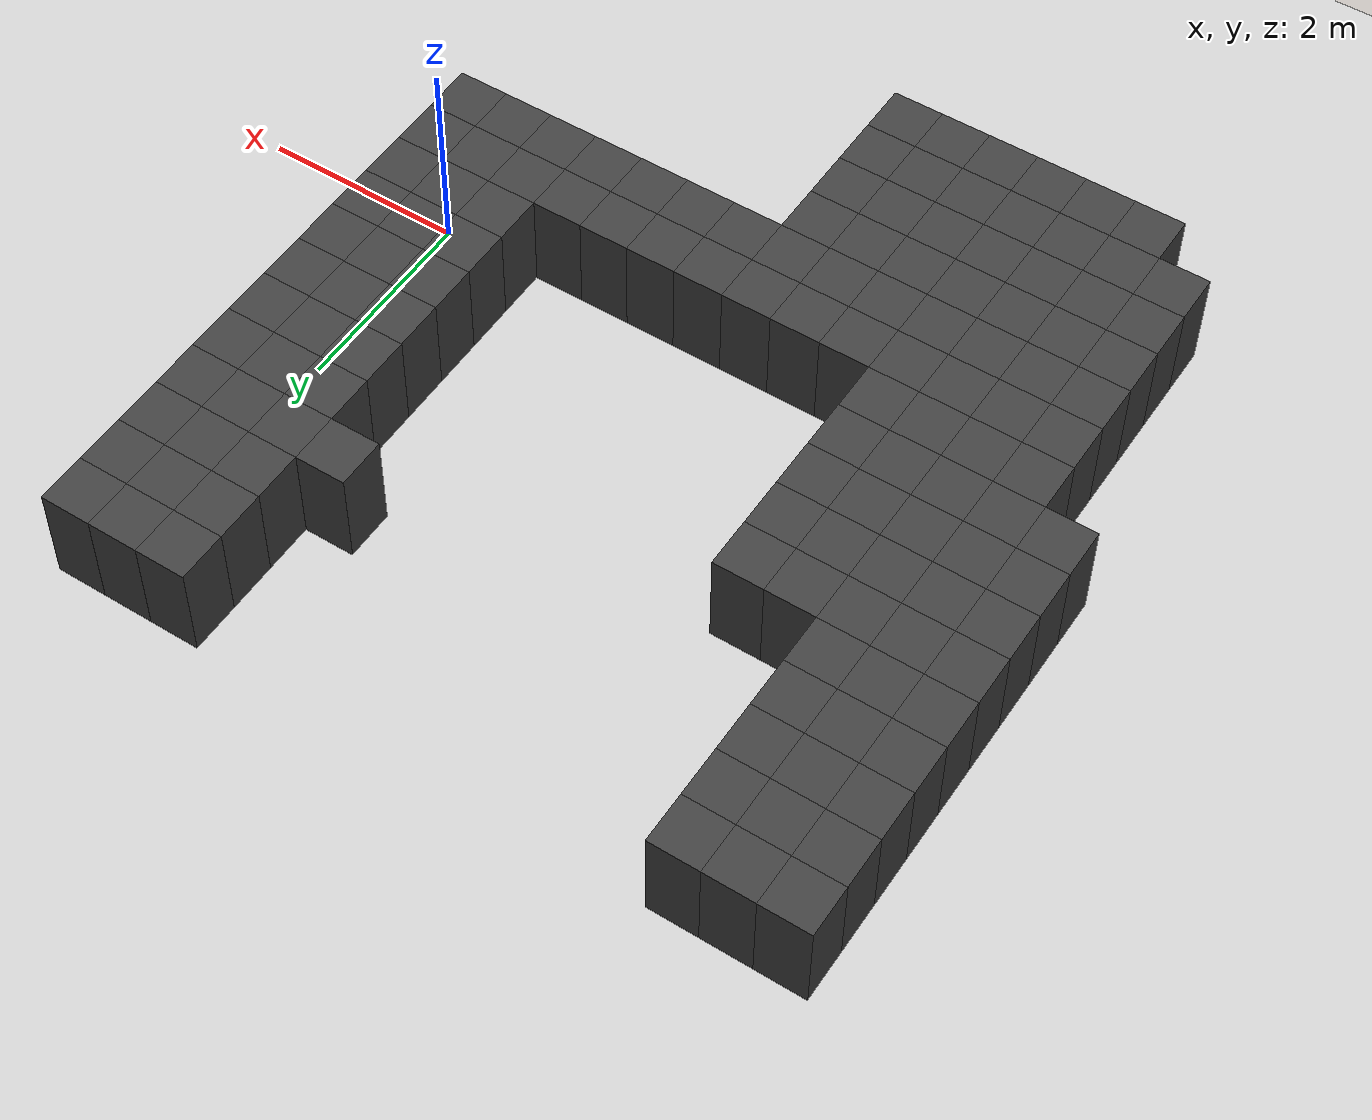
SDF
<sdf version="1.7">
 <world name="map_14802">
  <model name="ground_plane">
   <static>true</static>
   <link name="link">
    <collision name="collision">
     <geometry><plane><normal>0 0 1</normal><size>200 200</size></plane></geometry>
    </collision>
    <visual name="visual">
     <geometry><plane><normal>0 0 1</normal><size>200 200</size></plane></geometry>
     <material><ambient>0.8 0.8 0.8 1</ambient><diffuse>0.8 0.8 0.8 1</diffuse></material>
    </visual>
   </link>
  </model>
  <model name="maze_environment">
   <static>true</static>
   <link name="wall_536">
    <pose>-6.750 4.750 0.500 0 0 0</pose>
    <collision name="col"><geometry><box><size>0.5 0.5 1.0</size></box></geometry></collision>
    <visual name="vis">
     <geometry><box><size>0.5 0.5 1.0</size></box></geometry>
     <material><ambient>0.15 0.15 0.15 1</ambient><diffuse>0.25 0.25 0.25 1</diffuse></material>
    </visual>
   </link>
   <link name="wall_537">
    <pose>-6.250 4.750 0.500 0 0 0</pose>
    <collision name="col"><geometry><box><size>0.5 0.5 1.0</size></box></geometry></collision>
    <visual name="vis">
     <geometry><box><size>0.5 0.5 1.0</size></box></geometry>
     <material><ambient>0.15 0.15 0.15 1</ambient><diffuse>0.25 0.25 0.25 1</diffuse></material>
    </visual>
   </link>
   <link name="wall_538">
    <pose>-5.750 4.750 0.500 0 0 0</pose>
    <collision name="col"><geometry><box><size>0.5 0.5 1.0</size></box></geometry></collision>
    <visual name="vis">
     <geometry><box><size>0.5 0.5 1.0</size></box></geometry>
     <material><ambient>0.15 0.15 0.15 1</ambient><diffuse>0.25 0.25 0.25 1</diffuse></material>
    </visual>
   </link>
   <link name="wall_539">
    <pose>-0.750 4.750 0.500 0 0 0</pose>
    <collision name="col"><geometry><box><size>0.5 0.5 1.0</size></box></geometry></collision>
    <visual name="vis">
     <geometry><box><size>0.5 0.5 1.0</size></box></geometry>
     <material><ambient>0.15 0.15 0.15 1</ambient><diffuse>0.25 0.25 0.25 1</diffuse></material>
    </visual>
   </link>
   <link name="wall_540">
    <pose>-0.250 4.750 0.500 0 0 0</pose>
    <collision name="col"><geometry><box><size>0.5 0.5 1.0</size></box></geometry></collision>
    <visual name="vis">
     <geometry><box><size>0.5 0.5 1.0</size></box></geometry>
     <material><ambient>0.15 0.15 0.15 1</ambient><diffuse>0.25 0.25 0.25 1</diffuse></material>
    </visual>
   </link>
   <link name="wall_541">
    <pose>0.250 4.750 0.500 0 0 0</pose>
    <collision name="col"><geometry><box><size>0.5 0.5 1.0</size></box></geometry></collision>
    <visual name="vis">
     <geometry><box><size>0.5 0.5 1.0</size></box></geometry>
     <material><ambient>0.15 0.15 0.15 1</ambient><diffuse>0.25 0.25 0.25 1</diffuse></material>
    </visual>
   </link>
   <link name="wall_576">
    <pose>-6.750 4.250 0.500 0 0 0</pose>
    <collision name="col"><geometry><box><size>0.5 0.5 1.0</size></box></geometry></collision>
    <visual name="vis">
     <geometry><box><size>0.5 0.5 1.0</size></box></geometry>
     <material><ambient>0.15 0.15 0.15 1</ambient><diffuse>0.25 0.25 0.25 1</diffuse></material>
    </visual>
   </link>
   <link name="wall_577">
    <pose>-6.250 4.250 0.500 0 0 0</pose>
    <collision name="col"><geometry><box><size>0.5 0.5 1.0</size></box></geometry></collision>
    <visual name="vis">
     <geometry><box><size>0.5 0.5 1.0</size></box></geometry>
     <material><ambient>0.15 0.15 0.15 1</ambient><diffuse>0.25 0.25 0.25 1</diffuse></material>
    </visual>
   </link>
   <link name="wall_578">
    <pose>-5.750 4.250 0.500 0 0 0</pose>
    <collision name="col"><geometry><box><size>0.5 0.5 1.0</size></box></geometry></collision>
    <visual name="vis">
     <geometry><box><size>0.5 0.5 1.0</size></box></geometry>
     <material><ambient>0.15 0.15 0.15 1</ambient><diffuse>0.25 0.25 0.25 1</diffuse></material>
    </visual>
   </link>
   <link name="wall_579">
    <pose>-0.750 4.250 0.500 0 0 0</pose>
    <collision name="col"><geometry><box><size>0.5 0.5 1.0</size></box></geometry></collision>
    <visual name="vis">
     <geometry><box><size>0.5 0.5 1.0</size></box></geometry>
     <material><ambient>0.15 0.15 0.15 1</ambient><diffuse>0.25 0.25 0.25 1</diffuse></material>
    </visual>
   </link>
   <link name="wall_580">
    <pose>-0.250 4.250 0.500 0 0 0</pose>
    <collision name="col"><geometry><box><size>0.5 0.5 1.0</size></box></geometry></collision>
    <visual name="vis">
     <geometry><box><size>0.5 0.5 1.0</size></box></geometry>
     <material><ambient>0.15 0.15 0.15 1</ambient><diffuse>0.25 0.25 0.25 1</diffuse></material>
    </visual>
   </link>
   <link name="wall_581">
    <pose>0.250 4.250 0.500 0 0 0</pose>
    <collision name="col"><geometry><box><size>0.5 0.5 1.0</size></box></geometry></collision>
    <visual name="vis">
     <geometry><box><size>0.5 0.5 1.0</size></box></geometry>
     <material><ambient>0.15 0.15 0.15 1</ambient><diffuse>0.25 0.25 0.25 1</diffuse></material>
    </visual>
   </link>
   <link name="wall_616">
    <pose>-6.750 3.750 0.500 0 0 0</pose>
    <collision name="col"><geometry><box><size>0.5 0.5 1.0</size></box></geometry></collision>
    <visual name="vis">
     <geometry><box><size>0.5 0.5 1.0</size></box></geometry>
     <material><ambient>0.15 0.15 0.15 1</ambient><diffuse>0.25 0.25 0.25 1</diffuse></material>
    </visual>
   </link>
   <link name="wall_617">
    <pose>-6.250 3.750 0.500 0 0 0</pose>
    <collision name="col"><geometry><box><size>0.5 0.5 1.0</size></box></geometry></collision>
    <visual name="vis">
     <geometry><box><size>0.5 0.5 1.0</size></box></geometry>
     <material><ambient>0.15 0.15 0.15 1</ambient><diffuse>0.25 0.25 0.25 1</diffuse></material>
    </visual>
   </link>
   <link name="wall_618">
    <pose>-5.750 3.750 0.500 0 0 0</pose>
    <collision name="col"><geometry><box><size>0.5 0.5 1.0</size></box></geometry></collision>
    <visual name="vis">
     <geometry><box><size>0.5 0.5 1.0</size></box></geometry>
     <material><ambient>0.15 0.15 0.15 1</ambient><diffuse>0.25 0.25 0.25 1</diffuse></material>
    </visual>
   </link>
   <link name="wall_619">
    <pose>-0.750 3.750 0.500 0 0 0</pose>
    <collision name="col"><geometry><box><size>0.5 0.5 1.0</size></box></geometry></collision>
    <visual name="vis">
     <geometry><box><size>0.5 0.5 1.0</size></box></geometry>
     <material><ambient>0.15 0.15 0.15 1</ambient><diffuse>0.25 0.25 0.25 1</diffuse></material>
    </visual>
   </link>
   <link name="wall_620">
    <pose>-0.250 3.750 0.500 0 0 0</pose>
    <collision name="col"><geometry><box><size>0.5 0.5 1.0</size></box></geometry></collision>
    <visual name="vis">
     <geometry><box><size>0.5 0.5 1.0</size></box></geometry>
     <material><ambient>0.15 0.15 0.15 1</ambient><diffuse>0.25 0.25 0.25 1</diffuse></material>
    </visual>
   </link>
   <link name="wall_621">
    <pose>0.250 3.750 0.500 0 0 0</pose>
    <collision name="col"><geometry><box><size>0.5 0.5 1.0</size></box></geometry></collision>
    <visual name="vis">
     <geometry><box><size>0.5 0.5 1.0</size></box></geometry>
     <material><ambient>0.15 0.15 0.15 1</ambient><diffuse>0.25 0.25 0.25 1</diffuse></material>
    </visual>
   </link>
   <link name="wall_656">
    <pose>-6.750 3.250 0.500 0 0 0</pose>
    <collision name="col"><geometry><box><size>0.5 0.5 1.0</size></box></geometry></collision>
    <visual name="vis">
     <geometry><box><size>0.5 0.5 1.0</size></box></geometry>
     <material><ambient>0.15 0.15 0.15 1</ambient><diffuse>0.25 0.25 0.25 1</diffuse></material>
    </visual>
   </link>
   <link name="wall_657">
    <pose>-6.250 3.250 0.500 0 0 0</pose>
    <collision name="col"><geometry><box><size>0.5 0.5 1.0</size></box></geometry></collision>
    <visual name="vis">
     <geometry><box><size>0.5 0.5 1.0</size></box></geometry>
     <material><ambient>0.15 0.15 0.15 1</ambient><diffuse>0.25 0.25 0.25 1</diffuse></material>
    </visual>
   </link>
   <link name="wall_658">
    <pose>-5.750 3.250 0.500 0 0 0</pose>
    <collision name="col"><geometry><box><size>0.5 0.5 1.0</size></box></geometry></collision>
    <visual name="vis">
     <geometry><box><size>0.5 0.5 1.0</size></box></geometry>
     <material><ambient>0.15 0.15 0.15 1</ambient><diffuse>0.25 0.25 0.25 1</diffuse></material>
    </visual>
   </link>
   <link name="wall_659">
    <pose>-1.250 3.250 0.500 0 0 0</pose>
    <collision name="col"><geometry><box><size>0.5 0.5 1.0</size></box></geometry></collision>
    <visual name="vis">
     <geometry><box><size>0.5 0.5 1.0</size></box></geometry>
     <material><ambient>0.15 0.15 0.15 1</ambient><diffuse>0.25 0.25 0.25 1</diffuse></material>
    </visual>
   </link>
   <link name="wall_660">
    <pose>-0.750 3.250 0.500 0 0 0</pose>
    <collision name="col"><geometry><box><size>0.5 0.5 1.0</size></box></geometry></collision>
    <visual name="vis">
     <geometry><box><size>0.5 0.5 1.0</size></box></geometry>
     <material><ambient>0.15 0.15 0.15 1</ambient><diffuse>0.25 0.25 0.25 1</diffuse></material>
    </visual>
   </link>
   <link name="wall_661">
    <pose>-0.250 3.250 0.500 0 0 0</pose>
    <collision name="col"><geometry><box><size>0.5 0.5 1.0</size></box></geometry></collision>
    <visual name="vis">
     <geometry><box><size>0.5 0.5 1.0</size></box></geometry>
     <material><ambient>0.15 0.15 0.15 1</ambient><diffuse>0.25 0.25 0.25 1</diffuse></material>
    </visual>
   </link>
   <link name="wall_662">
    <pose>0.250 3.250 0.500 0 0 0</pose>
    <collision name="col"><geometry><box><size>0.5 0.5 1.0</size></box></geometry></collision>
    <visual name="vis">
     <geometry><box><size>0.5 0.5 1.0</size></box></geometry>
     <material><ambient>0.15 0.15 0.15 1</ambient><diffuse>0.25 0.25 0.25 1</diffuse></material>
    </visual>
   </link>
   <link name="wall_697">
    <pose>-6.750 2.750 0.500 0 0 0</pose>
    <collision name="col"><geometry><box><size>0.5 0.5 1.0</size></box></geometry></collision>
    <visual name="vis">
     <geometry><box><size>0.5 0.5 1.0</size></box></geometry>
     <material><ambient>0.15 0.15 0.15 1</ambient><diffuse>0.25 0.25 0.25 1</diffuse></material>
    </visual>
   </link>
   <link name="wall_698">
    <pose>-6.250 2.750 0.500 0 0 0</pose>
    <collision name="col"><geometry><box><size>0.5 0.5 1.0</size></box></geometry></collision>
    <visual name="vis">
     <geometry><box><size>0.5 0.5 1.0</size></box></geometry>
     <material><ambient>0.15 0.15 0.15 1</ambient><diffuse>0.25 0.25 0.25 1</diffuse></material>
    </visual>
   </link>
   <link name="wall_699">
    <pose>-5.750 2.750 0.500 0 0 0</pose>
    <collision name="col"><geometry><box><size>0.5 0.5 1.0</size></box></geometry></collision>
    <visual name="vis">
     <geometry><box><size>0.5 0.5 1.0</size></box></geometry>
     <material><ambient>0.15 0.15 0.15 1</ambient><diffuse>0.25 0.25 0.25 1</diffuse></material>
    </visual>
   </link>
   <link name="wall_700">
    <pose>-0.750 2.750 0.500 0 0 0</pose>
    <collision name="col"><geometry><box><size>0.5 0.5 1.0</size></box></geometry></collision>
    <visual name="vis">
     <geometry><box><size>0.5 0.5 1.0</size></box></geometry>
     <material><ambient>0.15 0.15 0.15 1</ambient><diffuse>0.25 0.25 0.25 1</diffuse></material>
    </visual>
   </link>
   <link name="wall_701">
    <pose>-0.250 2.750 0.500 0 0 0</pose>
    <collision name="col"><geometry><box><size>0.5 0.5 1.0</size></box></geometry></collision>
    <visual name="vis">
     <geometry><box><size>0.5 0.5 1.0</size></box></geometry>
     <material><ambient>0.15 0.15 0.15 1</ambient><diffuse>0.25 0.25 0.25 1</diffuse></material>
    </visual>
   </link>
   <link name="wall_702">
    <pose>0.250 2.750 0.500 0 0 0</pose>
    <collision name="col"><geometry><box><size>0.5 0.5 1.0</size></box></geometry></collision>
    <visual name="vis">
     <geometry><box><size>0.5 0.5 1.0</size></box></geometry>
     <material><ambient>0.15 0.15 0.15 1</ambient><diffuse>0.25 0.25 0.25 1</diffuse></material>
    </visual>
   </link>
   <link name="wall_734">
    <pose>-6.750 2.250 0.500 0 0 0</pose>
    <collision name="col"><geometry><box><size>0.5 0.5 1.0</size></box></geometry></collision>
    <visual name="vis">
     <geometry><box><size>0.5 0.5 1.0</size></box></geometry>
     <material><ambient>0.15 0.15 0.15 1</ambient><diffuse>0.25 0.25 0.25 1</diffuse></material>
    </visual>
   </link>
   <link name="wall_735">
    <pose>-6.250 2.250 0.500 0 0 0</pose>
    <collision name="col"><geometry><box><size>0.5 0.5 1.0</size></box></geometry></collision>
    <visual name="vis">
     <geometry><box><size>0.5 0.5 1.0</size></box></geometry>
     <material><ambient>0.15 0.15 0.15 1</ambient><diffuse>0.25 0.25 0.25 1</diffuse></material>
    </visual>
   </link>
   <link name="wall_736">
    <pose>-5.750 2.250 0.500 0 0 0</pose>
    <collision name="col"><geometry><box><size>0.5 0.5 1.0</size></box></geometry></collision>
    <visual name="vis">
     <geometry><box><size>0.5 0.5 1.0</size></box></geometry>
     <material><ambient>0.15 0.15 0.15 1</ambient><diffuse>0.25 0.25 0.25 1</diffuse></material>
    </visual>
   </link>
   <link name="wall_737">
    <pose>-5.250 2.250 0.500 0 0 0</pose>
    <collision name="col"><geometry><box><size>0.5 0.5 1.0</size></box></geometry></collision>
    <visual name="vis">
     <geometry><box><size>0.5 0.5 1.0</size></box></geometry>
     <material><ambient>0.15 0.15 0.15 1</ambient><diffuse>0.25 0.25 0.25 1</diffuse></material>
    </visual>
   </link>
   <link name="wall_738">
    <pose>-4.750 2.250 0.500 0 0 0</pose>
    <collision name="col"><geometry><box><size>0.5 0.5 1.0</size></box></geometry></collision>
    <visual name="vis">
     <geometry><box><size>0.5 0.5 1.0</size></box></geometry>
     <material><ambient>0.15 0.15 0.15 1</ambient><diffuse>0.25 0.25 0.25 1</diffuse></material>
    </visual>
   </link>
   <link name="wall_739">
    <pose>-0.750 2.250 0.500 0 0 0</pose>
    <collision name="col"><geometry><box><size>0.5 0.5 1.0</size></box></geometry></collision>
    <visual name="vis">
     <geometry><box><size>0.5 0.5 1.0</size></box></geometry>
     <material><ambient>0.15 0.15 0.15 1</ambient><diffuse>0.25 0.25 0.25 1</diffuse></material>
    </visual>
   </link>
   <link name="wall_740">
    <pose>-0.250 2.250 0.500 0 0 0</pose>
    <collision name="col"><geometry><box><size>0.5 0.5 1.0</size></box></geometry></collision>
    <visual name="vis">
     <geometry><box><size>0.5 0.5 1.0</size></box></geometry>
     <material><ambient>0.15 0.15 0.15 1</ambient><diffuse>0.25 0.25 0.25 1</diffuse></material>
    </visual>
   </link>
   <link name="wall_741">
    <pose>0.250 2.250 0.500 0 0 0</pose>
    <collision name="col"><geometry><box><size>0.5 0.5 1.0</size></box></geometry></collision>
    <visual name="vis">
     <geometry><box><size>0.5 0.5 1.0</size></box></geometry>
     <material><ambient>0.15 0.15 0.15 1</ambient><diffuse>0.25 0.25 0.25 1</diffuse></material>
    </visual>
   </link>
   <link name="wall_771">
    <pose>-6.750 1.750 0.500 0 0 0</pose>
    <collision name="col"><geometry><box><size>0.5 0.5 1.0</size></box></geometry></collision>
    <visual name="vis">
     <geometry><box><size>0.5 0.5 1.0</size></box></geometry>
     <material><ambient>0.15 0.15 0.15 1</ambient><diffuse>0.25 0.25 0.25 1</diffuse></material>
    </visual>
   </link>
   <link name="wall_772">
    <pose>-6.250 1.750 0.500 0 0 0</pose>
    <collision name="col"><geometry><box><size>0.5 0.5 1.0</size></box></geometry></collision>
    <visual name="vis">
     <geometry><box><size>0.5 0.5 1.0</size></box></geometry>
     <material><ambient>0.15 0.15 0.15 1</ambient><diffuse>0.25 0.25 0.25 1</diffuse></material>
    </visual>
   </link>
   <link name="wall_773">
    <pose>-5.750 1.750 0.500 0 0 0</pose>
    <collision name="col"><geometry><box><size>0.5 0.5 1.0</size></box></geometry></collision>
    <visual name="vis">
     <geometry><box><size>0.5 0.5 1.0</size></box></geometry>
     <material><ambient>0.15 0.15 0.15 1</ambient><diffuse>0.25 0.25 0.25 1</diffuse></material>
    </visual>
   </link>
   <link name="wall_774">
    <pose>-5.250 1.750 0.500 0 0 0</pose>
    <collision name="col"><geometry><box><size>0.5 0.5 1.0</size></box></geometry></collision>
    <visual name="vis">
     <geometry><box><size>0.5 0.5 1.0</size></box></geometry>
     <material><ambient>0.15 0.15 0.15 1</ambient><diffuse>0.25 0.25 0.25 1</diffuse></material>
    </visual>
   </link>
   <link name="wall_775">
    <pose>-4.750 1.750 0.500 0 0 0</pose>
    <collision name="col"><geometry><box><size>0.5 0.5 1.0</size></box></geometry></collision>
    <visual name="vis">
     <geometry><box><size>0.5 0.5 1.0</size></box></geometry>
     <material><ambient>0.15 0.15 0.15 1</ambient><diffuse>0.25 0.25 0.25 1</diffuse></material>
    </visual>
   </link>
   <link name="wall_776">
    <pose>-0.750 1.750 0.500 0 0 0</pose>
    <collision name="col"><geometry><box><size>0.5 0.5 1.0</size></box></geometry></collision>
    <visual name="vis">
     <geometry><box><size>0.5 0.5 1.0</size></box></geometry>
     <material><ambient>0.15 0.15 0.15 1</ambient><diffuse>0.25 0.25 0.25 1</diffuse></material>
    </visual>
   </link>
   <link name="wall_777">
    <pose>-0.250 1.750 0.500 0 0 0</pose>
    <collision name="col"><geometry><box><size>0.5 0.5 1.0</size></box></geometry></collision>
    <visual name="vis">
     <geometry><box><size>0.5 0.5 1.0</size></box></geometry>
     <material><ambient>0.15 0.15 0.15 1</ambient><diffuse>0.25 0.25 0.25 1</diffuse></material>
    </visual>
   </link>
   <link name="wall_778">
    <pose>0.250 1.750 0.500 0 0 0</pose>
    <collision name="col"><geometry><box><size>0.5 0.5 1.0</size></box></geometry></collision>
    <visual name="vis">
     <geometry><box><size>0.5 0.5 1.0</size></box></geometry>
     <material><ambient>0.15 0.15 0.15 1</ambient><diffuse>0.25 0.25 0.25 1</diffuse></material>
    </visual>
   </link>
   <link name="wall_808">
    <pose>-6.750 1.250 0.500 0 0 0</pose>
    <collision name="col"><geometry><box><size>0.5 0.5 1.0</size></box></geometry></collision>
    <visual name="vis">
     <geometry><box><size>0.5 0.5 1.0</size></box></geometry>
     <material><ambient>0.15 0.15 0.15 1</ambient><diffuse>0.25 0.25 0.25 1</diffuse></material>
    </visual>
   </link>
   <link name="wall_809">
    <pose>-6.250 1.250 0.500 0 0 0</pose>
    <collision name="col"><geometry><box><size>0.5 0.5 1.0</size></box></geometry></collision>
    <visual name="vis">
     <geometry><box><size>0.5 0.5 1.0</size></box></geometry>
     <material><ambient>0.15 0.15 0.15 1</ambient><diffuse>0.25 0.25 0.25 1</diffuse></material>
    </visual>
   </link>
   <link name="wall_810">
    <pose>-5.750 1.250 0.500 0 0 0</pose>
    <collision name="col"><geometry><box><size>0.5 0.5 1.0</size></box></geometry></collision>
    <visual name="vis">
     <geometry><box><size>0.5 0.5 1.0</size></box></geometry>
     <material><ambient>0.15 0.15 0.15 1</ambient><diffuse>0.25 0.25 0.25 1</diffuse></material>
    </visual>
   </link>
   <link name="wall_811">
    <pose>-5.250 1.250 0.500 0 0 0</pose>
    <collision name="col"><geometry><box><size>0.5 0.5 1.0</size></box></geometry></collision>
    <visual name="vis">
     <geometry><box><size>0.5 0.5 1.0</size></box></geometry>
     <material><ambient>0.15 0.15 0.15 1</ambient><diffuse>0.25 0.25 0.25 1</diffuse></material>
    </visual>
   </link>
   <link name="wall_812">
    <pose>-4.750 1.250 0.500 0 0 0</pose>
    <collision name="col"><geometry><box><size>0.5 0.5 1.0</size></box></geometry></collision>
    <visual name="vis">
     <geometry><box><size>0.5 0.5 1.0</size></box></geometry>
     <material><ambient>0.15 0.15 0.15 1</ambient><diffuse>0.25 0.25 0.25 1</diffuse></material>
    </visual>
   </link>
   <link name="wall_813">
    <pose>-0.750 1.250 0.500 0 0 0</pose>
    <collision name="col"><geometry><box><size>0.5 0.5 1.0</size></box></geometry></collision>
    <visual name="vis">
     <geometry><box><size>0.5 0.5 1.0</size></box></geometry>
     <material><ambient>0.15 0.15 0.15 1</ambient><diffuse>0.25 0.25 0.25 1</diffuse></material>
    </visual>
   </link>
   <link name="wall_814">
    <pose>-0.250 1.250 0.500 0 0 0</pose>
    <collision name="col"><geometry><box><size>0.5 0.5 1.0</size></box></geometry></collision>
    <visual name="vis">
     <geometry><box><size>0.5 0.5 1.0</size></box></geometry>
     <material><ambient>0.15 0.15 0.15 1</ambient><diffuse>0.25 0.25 0.25 1</diffuse></material>
    </visual>
   </link>
   <link name="wall_815">
    <pose>0.250 1.250 0.500 0 0 0</pose>
    <collision name="col"><geometry><box><size>0.5 0.5 1.0</size></box></geometry></collision>
    <visual name="vis">
     <geometry><box><size>0.5 0.5 1.0</size></box></geometry>
     <material><ambient>0.15 0.15 0.15 1</ambient><diffuse>0.25 0.25 0.25 1</diffuse></material>
    </visual>
   </link>
   <link name="wall_845">
    <pose>-6.750 0.750 0.500 0 0 0</pose>
    <collision name="col"><geometry><box><size>0.5 0.5 1.0</size></box></geometry></collision>
    <visual name="vis">
     <geometry><box><size>0.5 0.5 1.0</size></box></geometry>
     <material><ambient>0.15 0.15 0.15 1</ambient><diffuse>0.25 0.25 0.25 1</diffuse></material>
    </visual>
   </link>
   <link name="wall_846">
    <pose>-6.250 0.750 0.500 0 0 0</pose>
    <collision name="col"><geometry><box><size>0.5 0.5 1.0</size></box></geometry></collision>
    <visual name="vis">
     <geometry><box><size>0.5 0.5 1.0</size></box></geometry>
     <material><ambient>0.15 0.15 0.15 1</ambient><diffuse>0.25 0.25 0.25 1</diffuse></material>
    </visual>
   </link>
   <link name="wall_847">
    <pose>-5.750 0.750 0.500 0 0 0</pose>
    <collision name="col"><geometry><box><size>0.5 0.5 1.0</size></box></geometry></collision>
    <visual name="vis">
     <geometry><box><size>0.5 0.5 1.0</size></box></geometry>
     <material><ambient>0.15 0.15 0.15 1</ambient><diffuse>0.25 0.25 0.25 1</diffuse></material>
    </visual>
   </link>
   <link name="wall_848">
    <pose>-5.250 0.750 0.500 0 0 0</pose>
    <collision name="col"><geometry><box><size>0.5 0.5 1.0</size></box></geometry></collision>
    <visual name="vis">
     <geometry><box><size>0.5 0.5 1.0</size></box></geometry>
     <material><ambient>0.15 0.15 0.15 1</ambient><diffuse>0.25 0.25 0.25 1</diffuse></material>
    </visual>
   </link>
   <link name="wall_849">
    <pose>-4.750 0.750 0.500 0 0 0</pose>
    <collision name="col"><geometry><box><size>0.5 0.5 1.0</size></box></geometry></collision>
    <visual name="vis">
     <geometry><box><size>0.5 0.5 1.0</size></box></geometry>
     <material><ambient>0.15 0.15 0.15 1</ambient><diffuse>0.25 0.25 0.25 1</diffuse></material>
    </visual>
   </link>
   <link name="wall_850">
    <pose>-0.750 0.750 0.500 0 0 0</pose>
    <collision name="col"><geometry><box><size>0.5 0.5 1.0</size></box></geometry></collision>
    <visual name="vis">
     <geometry><box><size>0.5 0.5 1.0</size></box></geometry>
     <material><ambient>0.15 0.15 0.15 1</ambient><diffuse>0.25 0.25 0.25 1</diffuse></material>
    </visual>
   </link>
   <link name="wall_851">
    <pose>-0.250 0.750 0.500 0 0 0</pose>
    <collision name="col"><geometry><box><size>0.5 0.5 1.0</size></box></geometry></collision>
    <visual name="vis">
     <geometry><box><size>0.5 0.5 1.0</size></box></geometry>
     <material><ambient>0.15 0.15 0.15 1</ambient><diffuse>0.25 0.25 0.25 1</diffuse></material>
    </visual>
   </link>
   <link name="wall_852">
    <pose>0.250 0.750 0.500 0 0 0</pose>
    <collision name="col"><geometry><box><size>0.5 0.5 1.0</size></box></geometry></collision>
    <visual name="vis">
     <geometry><box><size>0.5 0.5 1.0</size></box></geometry>
     <material><ambient>0.15 0.15 0.15 1</ambient><diffuse>0.25 0.25 0.25 1</diffuse></material>
    </visual>
   </link>
   <link name="wall_877">
    <pose>-6.250 0.250 0.500 0 0 0</pose>
    <collision name="col"><geometry><box><size>0.5 0.5 1.0</size></box></geometry></collision>
    <visual name="vis">
     <geometry><box><size>0.5 0.5 1.0</size></box></geometry>
     <material><ambient>0.15 0.15 0.15 1</ambient><diffuse>0.25 0.25 0.25 1</diffuse></material>
    </visual>
   </link>
   <link name="wall_878">
    <pose>-5.750 0.250 0.500 0 0 0</pose>
    <collision name="col"><geometry><box><size>0.5 0.5 1.0</size></box></geometry></collision>
    <visual name="vis">
     <geometry><box><size>0.5 0.5 1.0</size></box></geometry>
     <material><ambient>0.15 0.15 0.15 1</ambient><diffuse>0.25 0.25 0.25 1</diffuse></material>
    </visual>
   </link>
   <link name="wall_879">
    <pose>-5.250 0.250 0.500 0 0 0</pose>
    <collision name="col"><geometry><box><size>0.5 0.5 1.0</size></box></geometry></collision>
    <visual name="vis">
     <geometry><box><size>0.5 0.5 1.0</size></box></geometry>
     <material><ambient>0.15 0.15 0.15 1</ambient><diffuse>0.25 0.25 0.25 1</diffuse></material>
    </visual>
   </link>
   <link name="wall_880">
    <pose>-4.750 0.250 0.500 0 0 0</pose>
    <collision name="col"><geometry><box><size>0.5 0.5 1.0</size></box></geometry></collision>
    <visual name="vis">
     <geometry><box><size>0.5 0.5 1.0</size></box></geometry>
     <material><ambient>0.15 0.15 0.15 1</ambient><diffuse>0.25 0.25 0.25 1</diffuse></material>
    </visual>
   </link>
   <link name="wall_881">
    <pose>-0.750 0.250 0.500 0 0 0</pose>
    <collision name="col"><geometry><box><size>0.5 0.5 1.0</size></box></geometry></collision>
    <visual name="vis">
     <geometry><box><size>0.5 0.5 1.0</size></box></geometry>
     <material><ambient>0.15 0.15 0.15 1</ambient><diffuse>0.25 0.25 0.25 1</diffuse></material>
    </visual>
   </link>
   <link name="wall_882">
    <pose>-0.250 0.250 0.500 0 0 0</pose>
    <collision name="col"><geometry><box><size>0.5 0.5 1.0</size></box></geometry></collision>
    <visual name="vis">
     <geometry><box><size>0.5 0.5 1.0</size></box></geometry>
     <material><ambient>0.15 0.15 0.15 1</ambient><diffuse>0.25 0.25 0.25 1</diffuse></material>
    </visual>
   </link>
   <link name="wall_883">
    <pose>0.250 0.250 0.500 0 0 0</pose>
    <collision name="col"><geometry><box><size>0.5 0.5 1.0</size></box></geometry></collision>
    <visual name="vis">
     <geometry><box><size>0.5 0.5 1.0</size></box></geometry>
     <material><ambient>0.15 0.15 0.15 1</ambient><diffuse>0.25 0.25 0.25 1</diffuse></material>
    </visual>
   </link>
   <link name="wall_908">
    <pose>-6.250 -0.250 0.500 0 0 0</pose>
    <collision name="col"><geometry><box><size>0.5 0.5 1.0</size></box></geometry></collision>
    <visual name="vis">
     <geometry><box><size>0.5 0.5 1.0</size></box></geometry>
     <material><ambient>0.15 0.15 0.15 1</ambient><diffuse>0.25 0.25 0.25 1</diffuse></material>
    </visual>
   </link>
   <link name="wall_909">
    <pose>-5.750 -0.250 0.500 0 0 0</pose>
    <collision name="col"><geometry><box><size>0.5 0.5 1.0</size></box></geometry></collision>
    <visual name="vis">
     <geometry><box><size>0.5 0.5 1.0</size></box></geometry>
     <material><ambient>0.15 0.15 0.15 1</ambient><diffuse>0.25 0.25 0.25 1</diffuse></material>
    </visual>
   </link>
   <link name="wall_910">
    <pose>-5.250 -0.250 0.500 0 0 0</pose>
    <collision name="col"><geometry><box><size>0.5 0.5 1.0</size></box></geometry></collision>
    <visual name="vis">
     <geometry><box><size>0.5 0.5 1.0</size></box></geometry>
     <material><ambient>0.15 0.15 0.15 1</ambient><diffuse>0.25 0.25 0.25 1</diffuse></material>
    </visual>
   </link>
   <link name="wall_911">
    <pose>-4.750 -0.250 0.500 0 0 0</pose>
    <collision name="col"><geometry><box><size>0.5 0.5 1.0</size></box></geometry></collision>
    <visual name="vis">
     <geometry><box><size>0.5 0.5 1.0</size></box></geometry>
     <material><ambient>0.15 0.15 0.15 1</ambient><diffuse>0.25 0.25 0.25 1</diffuse></material>
    </visual>
   </link>
   <link name="wall_912">
    <pose>-4.250 -0.250 0.500 0 0 0</pose>
    <collision name="col"><geometry><box><size>0.5 0.5 1.0</size></box></geometry></collision>
    <visual name="vis">
     <geometry><box><size>0.5 0.5 1.0</size></box></geometry>
     <material><ambient>0.15 0.15 0.15 1</ambient><diffuse>0.25 0.25 0.25 1</diffuse></material>
    </visual>
   </link>
   <link name="wall_913">
    <pose>-3.750 -0.250 0.500 0 0 0</pose>
    <collision name="col"><geometry><box><size>0.5 0.5 1.0</size></box></geometry></collision>
    <visual name="vis">
     <geometry><box><size>0.5 0.5 1.0</size></box></geometry>
     <material><ambient>0.15 0.15 0.15 1</ambient><diffuse>0.25 0.25 0.25 1</diffuse></material>
    </visual>
   </link>
   <link name="wall_914">
    <pose>-3.250 -0.250 0.500 0 0 0</pose>
    <collision name="col"><geometry><box><size>0.5 0.5 1.0</size></box></geometry></collision>
    <visual name="vis">
     <geometry><box><size>0.5 0.5 1.0</size></box></geometry>
     <material><ambient>0.15 0.15 0.15 1</ambient><diffuse>0.25 0.25 0.25 1</diffuse></material>
    </visual>
   </link>
   <link name="wall_915">
    <pose>-2.750 -0.250 0.500 0 0 0</pose>
    <collision name="col"><geometry><box><size>0.5 0.5 1.0</size></box></geometry></collision>
    <visual name="vis">
     <geometry><box><size>0.5 0.5 1.0</size></box></geometry>
     <material><ambient>0.15 0.15 0.15 1</ambient><diffuse>0.25 0.25 0.25 1</diffuse></material>
    </visual>
   </link>
   <link name="wall_916">
    <pose>-2.250 -0.250 0.500 0 0 0</pose>
    <collision name="col"><geometry><box><size>0.5 0.5 1.0</size></box></geometry></collision>
    <visual name="vis">
     <geometry><box><size>0.5 0.5 1.0</size></box></geometry>
     <material><ambient>0.15 0.15 0.15 1</ambient><diffuse>0.25 0.25 0.25 1</diffuse></material>
    </visual>
   </link>
   <link name="wall_917">
    <pose>-1.750 -0.250 0.500 0 0 0</pose>
    <collision name="col"><geometry><box><size>0.5 0.5 1.0</size></box></geometry></collision>
    <visual name="vis">
     <geometry><box><size>0.5 0.5 1.0</size></box></geometry>
     <material><ambient>0.15 0.15 0.15 1</ambient><diffuse>0.25 0.25 0.25 1</diffuse></material>
    </visual>
   </link>
   <link name="wall_918">
    <pose>-1.250 -0.250 0.500 0 0 0</pose>
    <collision name="col"><geometry><box><size>0.5 0.5 1.0</size></box></geometry></collision>
    <visual name="vis">
     <geometry><box><size>0.5 0.5 1.0</size></box></geometry>
     <material><ambient>0.15 0.15 0.15 1</ambient><diffuse>0.25 0.25 0.25 1</diffuse></material>
    </visual>
   </link>
   <link name="wall_919">
    <pose>-0.750 -0.250 0.500 0 0 0</pose>
    <collision name="col"><geometry><box><size>0.5 0.5 1.0</size></box></geometry></collision>
    <visual name="vis">
     <geometry><box><size>0.5 0.5 1.0</size></box></geometry>
     <material><ambient>0.15 0.15 0.15 1</ambient><diffuse>0.25 0.25 0.25 1</diffuse></material>
    </visual>
   </link>
   <link name="wall_920">
    <pose>-0.250 -0.250 0.500 0 0 0</pose>
    <collision name="col"><geometry><box><size>0.5 0.5 1.0</size></box></geometry></collision>
    <visual name="vis">
     <geometry><box><size>0.5 0.5 1.0</size></box></geometry>
     <material><ambient>0.15 0.15 0.15 1</ambient><diffuse>0.25 0.25 0.25 1</diffuse></material>
    </visual>
   </link>
   <link name="wall_921">
    <pose>0.250 -0.250 0.500 0 0 0</pose>
    <collision name="col"><geometry><box><size>0.5 0.5 1.0</size></box></geometry></collision>
    <visual name="vis">
     <geometry><box><size>0.5 0.5 1.0</size></box></geometry>
     <material><ambient>0.15 0.15 0.15 1</ambient><diffuse>0.25 0.25 0.25 1</diffuse></material>
    </visual>
   </link>
   <link name="wall_946">
    <pose>-6.250 -0.750 0.500 0 0 0</pose>
    <collision name="col"><geometry><box><size>0.5 0.5 1.0</size></box></geometry></collision>
    <visual name="vis">
     <geometry><box><size>0.5 0.5 1.0</size></box></geometry>
     <material><ambient>0.15 0.15 0.15 1</ambient><diffuse>0.25 0.25 0.25 1</diffuse></material>
    </visual>
   </link>
   <link name="wall_947">
    <pose>-5.750 -0.750 0.500 0 0 0</pose>
    <collision name="col"><geometry><box><size>0.5 0.5 1.0</size></box></geometry></collision>
    <visual name="vis">
     <geometry><box><size>0.5 0.5 1.0</size></box></geometry>
     <material><ambient>0.15 0.15 0.15 1</ambient><diffuse>0.25 0.25 0.25 1</diffuse></material>
    </visual>
   </link>
   <link name="wall_948">
    <pose>-5.250 -0.750 0.500 0 0 0</pose>
    <collision name="col"><geometry><box><size>0.5 0.5 1.0</size></box></geometry></collision>
    <visual name="vis">
     <geometry><box><size>0.5 0.5 1.0</size></box></geometry>
     <material><ambient>0.15 0.15 0.15 1</ambient><diffuse>0.25 0.25 0.25 1</diffuse></material>
    </visual>
   </link>
   <link name="wall_949">
    <pose>-4.750 -0.750 0.500 0 0 0</pose>
    <collision name="col"><geometry><box><size>0.5 0.5 1.0</size></box></geometry></collision>
    <visual name="vis">
     <geometry><box><size>0.5 0.5 1.0</size></box></geometry>
     <material><ambient>0.15 0.15 0.15 1</ambient><diffuse>0.25 0.25 0.25 1</diffuse></material>
    </visual>
   </link>
   <link name="wall_950">
    <pose>-4.250 -0.750 0.500 0 0 0</pose>
    <collision name="col"><geometry><box><size>0.5 0.5 1.0</size></box></geometry></collision>
    <visual name="vis">
     <geometry><box><size>0.5 0.5 1.0</size></box></geometry>
     <material><ambient>0.15 0.15 0.15 1</ambient><diffuse>0.25 0.25 0.25 1</diffuse></material>
    </visual>
   </link>
   <link name="wall_951">
    <pose>-3.750 -0.750 0.500 0 0 0</pose>
    <collision name="col"><geometry><box><size>0.5 0.5 1.0</size></box></geometry></collision>
    <visual name="vis">
     <geometry><box><size>0.5 0.5 1.0</size></box></geometry>
     <material><ambient>0.15 0.15 0.15 1</ambient><diffuse>0.25 0.25 0.25 1</diffuse></material>
    </visual>
   </link>
   <link name="wall_952">
    <pose>-3.250 -0.750 0.500 0 0 0</pose>
    <collision name="col"><geometry><box><size>0.5 0.5 1.0</size></box></geometry></collision>
    <visual name="vis">
     <geometry><box><size>0.5 0.5 1.0</size></box></geometry>
     <material><ambient>0.15 0.15 0.15 1</ambient><diffuse>0.25 0.25 0.25 1</diffuse></material>
    </visual>
   </link>
   <link name="wall_953">
    <pose>-2.750 -0.750 0.500 0 0 0</pose>
    <collision name="col"><geometry><box><size>0.5 0.5 1.0</size></box></geometry></collision>
    <visual name="vis">
     <geometry><box><size>0.5 0.5 1.0</size></box></geometry>
     <material><ambient>0.15 0.15 0.15 1</ambient><diffuse>0.25 0.25 0.25 1</diffuse></material>
    </visual>
   </link>
   <link name="wall_954">
    <pose>-2.250 -0.750 0.500 0 0 0</pose>
    <collision name="col"><geometry><box><size>0.5 0.5 1.0</size></box></geometry></collision>
    <visual name="vis">
     <geometry><box><size>0.5 0.5 1.0</size></box></geometry>
     <material><ambient>0.15 0.15 0.15 1</ambient><diffuse>0.25 0.25 0.25 1</diffuse></material>
    </visual>
   </link>
   <link name="wall_955">
    <pose>-1.750 -0.750 0.500 0 0 0</pose>
    <collision name="col"><geometry><box><size>0.5 0.5 1.0</size></box></geometry></collision>
    <visual name="vis">
     <geometry><box><size>0.5 0.5 1.0</size></box></geometry>
     <material><ambient>0.15 0.15 0.15 1</ambient><diffuse>0.25 0.25 0.25 1</diffuse></material>
    </visual>
   </link>
   <link name="wall_956">
    <pose>-1.250 -0.750 0.500 0 0 0</pose>
    <collision name="col"><geometry><box><size>0.5 0.5 1.0</size></box></geometry></collision>
    <visual name="vis">
     <geometry><box><size>0.5 0.5 1.0</size></box></geometry>
     <material><ambient>0.15 0.15 0.15 1</ambient><diffuse>0.25 0.25 0.25 1</diffuse></material>
    </visual>
   </link>
   <link name="wall_957">
    <pose>-0.750 -0.750 0.500 0 0 0</pose>
    <collision name="col"><geometry><box><size>0.5 0.5 1.0</size></box></geometry></collision>
    <visual name="vis">
     <geometry><box><size>0.5 0.5 1.0</size></box></geometry>
     <material><ambient>0.15 0.15 0.15 1</ambient><diffuse>0.25 0.25 0.25 1</diffuse></material>
    </visual>
   </link>
   <link name="wall_958">
    <pose>-0.250 -0.750 0.500 0 0 0</pose>
    <collision name="col"><geometry><box><size>0.5 0.5 1.0</size></box></geometry></collision>
    <visual name="vis">
     <geometry><box><size>0.5 0.5 1.0</size></box></geometry>
     <material><ambient>0.15 0.15 0.15 1</ambient><diffuse>0.25 0.25 0.25 1</diffuse></material>
    </visual>
   </link>
   <link name="wall_959">
    <pose>0.250 -0.750 0.500 0 0 0</pose>
    <collision name="col"><geometry><box><size>0.5 0.5 1.0</size></box></geometry></collision>
    <visual name="vis">
     <geometry><box><size>0.5 0.5 1.0</size></box></geometry>
     <material><ambient>0.15 0.15 0.15 1</ambient><diffuse>0.25 0.25 0.25 1</diffuse></material>
    </visual>
   </link>
   <link name="wall_979">
    <pose>-6.250 -1.250 0.500 0 0 0</pose>
    <collision name="col"><geometry><box><size>0.5 0.5 1.0</size></box></geometry></collision>
    <visual name="vis">
     <geometry><box><size>0.5 0.5 1.0</size></box></geometry>
     <material><ambient>0.15 0.15 0.15 1</ambient><diffuse>0.25 0.25 0.25 1</diffuse></material>
    </visual>
   </link>
   <link name="wall_980">
    <pose>-5.750 -1.250 0.500 0 0 0</pose>
    <collision name="col"><geometry><box><size>0.5 0.5 1.0</size></box></geometry></collision>
    <visual name="vis">
     <geometry><box><size>0.5 0.5 1.0</size></box></geometry>
     <material><ambient>0.15 0.15 0.15 1</ambient><diffuse>0.25 0.25 0.25 1</diffuse></material>
    </visual>
   </link>
   <link name="wall_981">
    <pose>-5.250 -1.250 0.500 0 0 0</pose>
    <collision name="col"><geometry><box><size>0.5 0.5 1.0</size></box></geometry></collision>
    <visual name="vis">
     <geometry><box><size>0.5 0.5 1.0</size></box></geometry>
     <material><ambient>0.15 0.15 0.15 1</ambient><diffuse>0.25 0.25 0.25 1</diffuse></material>
    </visual>
   </link>
   <link name="wall_982">
    <pose>-4.750 -1.250 0.500 0 0 0</pose>
    <collision name="col"><geometry><box><size>0.5 0.5 1.0</size></box></geometry></collision>
    <visual name="vis">
     <geometry><box><size>0.5 0.5 1.0</size></box></geometry>
     <material><ambient>0.15 0.15 0.15 1</ambient><diffuse>0.25 0.25 0.25 1</diffuse></material>
    </visual>
   </link>
   <link name="wall_983">
    <pose>-4.250 -1.250 0.500 0 0 0</pose>
    <collision name="col"><geometry><box><size>0.5 0.5 1.0</size></box></geometry></collision>
    <visual name="vis">
     <geometry><box><size>0.5 0.5 1.0</size></box></geometry>
     <material><ambient>0.15 0.15 0.15 1</ambient><diffuse>0.25 0.25 0.25 1</diffuse></material>
    </visual>
   </link>
   <link name="wall_984">
    <pose>-3.750 -1.250 0.500 0 0 0</pose>
    <collision name="col"><geometry><box><size>0.5 0.5 1.0</size></box></geometry></collision>
    <visual name="vis">
     <geometry><box><size>0.5 0.5 1.0</size></box></geometry>
     <material><ambient>0.15 0.15 0.15 1</ambient><diffuse>0.25 0.25 0.25 1</diffuse></material>
    </visual>
   </link>
   <link name="wall_985">
    <pose>-3.250 -1.250 0.500 0 0 0</pose>
    <collision name="col"><geometry><box><size>0.5 0.5 1.0</size></box></geometry></collision>
    <visual name="vis">
     <geometry><box><size>0.5 0.5 1.0</size></box></geometry>
     <material><ambient>0.15 0.15 0.15 1</ambient><diffuse>0.25 0.25 0.25 1</diffuse></material>
    </visual>
   </link>
   <link name="wall_1003">
    <pose>-6.250 -1.750 0.500 0 0 0</pose>
    <collision name="col"><geometry><box><size>0.5 0.5 1.0</size></box></geometry></collision>
    <visual name="vis">
     <geometry><box><size>0.5 0.5 1.0</size></box></geometry>
     <material><ambient>0.15 0.15 0.15 1</ambient><diffuse>0.25 0.25 0.25 1</diffuse></material>
    </visual>
   </link>
   <link name="wall_1004">
    <pose>-5.750 -1.750 0.500 0 0 0</pose>
    <collision name="col"><geometry><box><size>0.5 0.5 1.0</size></box></geometry></collision>
    <visual name="vis">
     <geometry><box><size>0.5 0.5 1.0</size></box></geometry>
     <material><ambient>0.15 0.15 0.15 1</ambient><diffuse>0.25 0.25 0.25 1</diffuse></material>
    </visual>
   </link>
   <link name="wall_1005">
    <pose>-5.250 -1.750 0.500 0 0 0</pose>
    <collision name="col"><geometry><box><size>0.5 0.5 1.0</size></box></geometry></collision>
    <visual name="vis">
     <geometry><box><size>0.5 0.5 1.0</size></box></geometry>
     <material><ambient>0.15 0.15 0.15 1</ambient><diffuse>0.25 0.25 0.25 1</diffuse></material>
    </visual>
   </link>
   <link name="wall_1006">
    <pose>-4.750 -1.750 0.500 0 0 0</pose>
    <collision name="col"><geometry><box><size>0.5 0.5 1.0</size></box></geometry></collision>
    <visual name="vis">
     <geometry><box><size>0.5 0.5 1.0</size></box></geometry>
     <material><ambient>0.15 0.15 0.15 1</ambient><diffuse>0.25 0.25 0.25 1</diffuse></material>
    </visual>
   </link>
   <link name="wall_1007">
    <pose>-4.250 -1.750 0.500 0 0 0</pose>
    <collision name="col"><geometry><box><size>0.5 0.5 1.0</size></box></geometry></collision>
    <visual name="vis">
     <geometry><box><size>0.5 0.5 1.0</size></box></geometry>
     <material><ambient>0.15 0.15 0.15 1</ambient><diffuse>0.25 0.25 0.25 1</diffuse></material>
    </visual>
   </link>
   <link name="wall_1008">
    <pose>-3.750 -1.750 0.500 0 0 0</pose>
    <collision name="col"><geometry><box><size>0.5 0.5 1.0</size></box></geometry></collision>
    <visual name="vis">
     <geometry><box><size>0.5 0.5 1.0</size></box></geometry>
     <material><ambient>0.15 0.15 0.15 1</ambient><diffuse>0.25 0.25 0.25 1</diffuse></material>
    </visual>
   </link>
   <link name="wall_1009">
    <pose>-3.250 -1.750 0.500 0 0 0</pose>
    <collision name="col"><geometry><box><size>0.5 0.5 1.0</size></box></geometry></collision>
    <visual name="vis">
     <geometry><box><size>0.5 0.5 1.0</size></box></geometry>
     <material><ambient>0.15 0.15 0.15 1</ambient><diffuse>0.25 0.25 0.25 1</diffuse></material>
    </visual>
   </link>
   <link name="wall_1025">
    <pose>-6.250 -2.250 0.500 0 0 0</pose>
    <collision name="col"><geometry><box><size>0.5 0.5 1.0</size></box></geometry></collision>
    <visual name="vis">
     <geometry><box><size>0.5 0.5 1.0</size></box></geometry>
     <material><ambient>0.15 0.15 0.15 1</ambient><diffuse>0.25 0.25 0.25 1</diffuse></material>
    </visual>
   </link>
   <link name="wall_1026">
    <pose>-5.750 -2.250 0.500 0 0 0</pose>
    <collision name="col"><geometry><box><size>0.5 0.5 1.0</size></box></geometry></collision>
    <visual name="vis">
     <geometry><box><size>0.5 0.5 1.0</size></box></geometry>
     <material><ambient>0.15 0.15 0.15 1</ambient><diffuse>0.25 0.25 0.25 1</diffuse></material>
    </visual>
   </link>
   <link name="wall_1027">
    <pose>-5.250 -2.250 0.500 0 0 0</pose>
    <collision name="col"><geometry><box><size>0.5 0.5 1.0</size></box></geometry></collision>
    <visual name="vis">
     <geometry><box><size>0.5 0.5 1.0</size></box></geometry>
     <material><ambient>0.15 0.15 0.15 1</ambient><diffuse>0.25 0.25 0.25 1</diffuse></material>
    </visual>
   </link>
   <link name="wall_1028">
    <pose>-4.750 -2.250 0.500 0 0 0</pose>
    <collision name="col"><geometry><box><size>0.5 0.5 1.0</size></box></geometry></collision>
    <visual name="vis">
     <geometry><box><size>0.5 0.5 1.0</size></box></geometry>
     <material><ambient>0.15 0.15 0.15 1</ambient><diffuse>0.25 0.25 0.25 1</diffuse></material>
    </visual>
   </link>
   <link name="wall_1029">
    <pose>-4.250 -2.250 0.500 0 0 0</pose>
    <collision name="col"><geometry><box><size>0.5 0.5 1.0</size></box></geometry></collision>
    <visual name="vis">
     <geometry><box><size>0.5 0.5 1.0</size></box></geometry>
     <material><ambient>0.15 0.15 0.15 1</ambient><diffuse>0.25 0.25 0.25 1</diffuse></material>
    </visual>
   </link>
   <link name="wall_1030">
    <pose>-3.750 -2.250 0.500 0 0 0</pose>
    <collision name="col"><geometry><box><size>0.5 0.5 1.0</size></box></geometry></collision>
    <visual name="vis">
     <geometry><box><size>0.5 0.5 1.0</size></box></geometry>
     <material><ambient>0.15 0.15 0.15 1</ambient><diffuse>0.25 0.25 0.25 1</diffuse></material>
    </visual>
   </link>
   <link name="wall_1031">
    <pose>-3.250 -2.250 0.500 0 0 0</pose>
    <collision name="col"><geometry><box><size>0.5 0.5 1.0</size></box></geometry></collision>
    <visual name="vis">
     <geometry><box><size>0.5 0.5 1.0</size></box></geometry>
     <material><ambient>0.15 0.15 0.15 1</ambient><diffuse>0.25 0.25 0.25 1</diffuse></material>
    </visual>
   </link>
   <link name="wall_1051">
    <pose>-5.750 -2.750 0.500 0 0 0</pose>
    <collision name="col"><geometry><box><size>0.5 0.5 1.0</size></box></geometry></collision>
    <visual name="vis">
     <geometry><box><size>0.5 0.5 1.0</size></box></geometry>
     <material><ambient>0.15 0.15 0.15 1</ambient><diffuse>0.25 0.25 0.25 1</diffuse></material>
    </visual>
   </link>
   <link name="wall_1052">
    <pose>-5.250 -2.750 0.500 0 0 0</pose>
    <collision name="col"><geometry><box><size>0.5 0.5 1.0</size></box></geometry></collision>
    <visual name="vis">
     <geometry><box><size>0.5 0.5 1.0</size></box></geometry>
     <material><ambient>0.15 0.15 0.15 1</ambient><diffuse>0.25 0.25 0.25 1</diffuse></material>
    </visual>
   </link>
   <link name="wall_1053">
    <pose>-4.750 -2.750 0.500 0 0 0</pose>
    <collision name="col"><geometry><box><size>0.5 0.5 1.0</size></box></geometry></collision>
    <visual name="vis">
     <geometry><box><size>0.5 0.5 1.0</size></box></geometry>
     <material><ambient>0.15 0.15 0.15 1</ambient><diffuse>0.25 0.25 0.25 1</diffuse></material>
    </visual>
   </link>
   <link name="wall_1054">
    <pose>-4.250 -2.750 0.500 0 0 0</pose>
    <collision name="col"><geometry><box><size>0.5 0.5 1.0</size></box></geometry></collision>
    <visual name="vis">
     <geometry><box><size>0.5 0.5 1.0</size></box></geometry>
     <material><ambient>0.15 0.15 0.15 1</ambient><diffuse>0.25 0.25 0.25 1</diffuse></material>
    </visual>
   </link>
   <link name="wall_1055">
    <pose>-3.750 -2.750 0.500 0 0 0</pose>
    <collision name="col"><geometry><box><size>0.5 0.5 1.0</size></box></geometry></collision>
    <visual name="vis">
     <geometry><box><size>0.5 0.5 1.0</size></box></geometry>
     <material><ambient>0.15 0.15 0.15 1</ambient><diffuse>0.25 0.25 0.25 1</diffuse></material>
    </visual>
   </link>
   <link name="wall_1056">
    <pose>-3.250 -2.750 0.500 0 0 0</pose>
    <collision name="col"><geometry><box><size>0.5 0.5 1.0</size></box></geometry></collision>
    <visual name="vis">
     <geometry><box><size>0.5 0.5 1.0</size></box></geometry>
     <material><ambient>0.15 0.15 0.15 1</ambient><diffuse>0.25 0.25 0.25 1</diffuse></material>
    </visual>
   </link>
  </model>
 </world>
</sdf>
